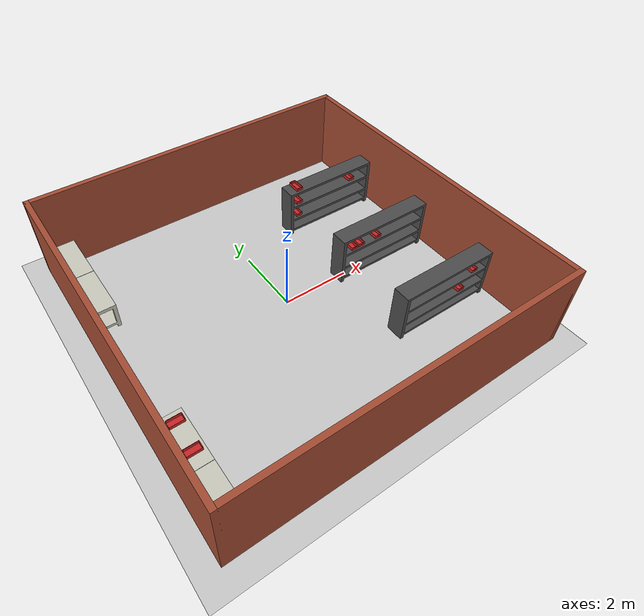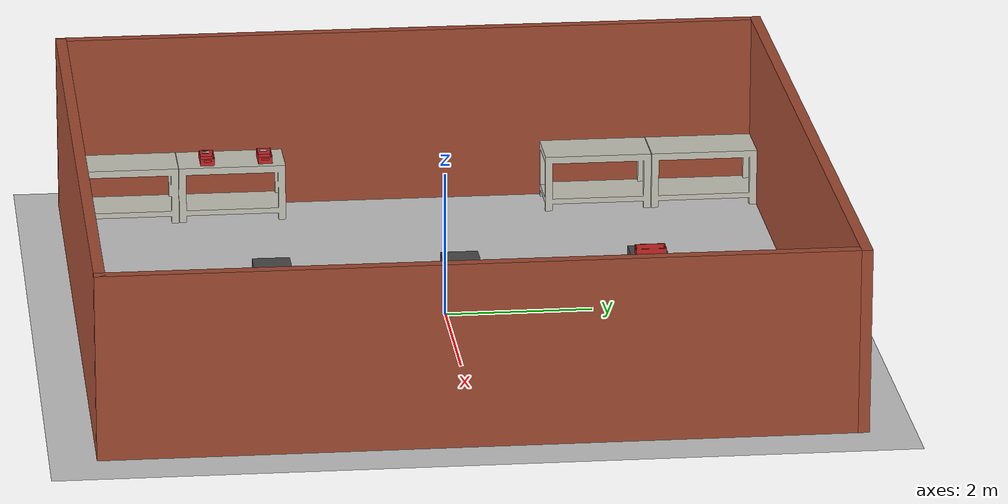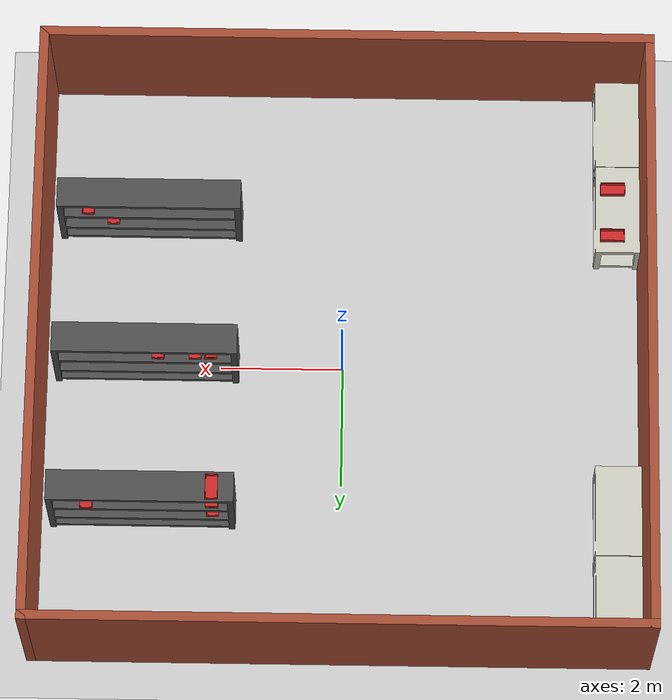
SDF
<sdf version="1.7">
 <world name="default">
  <light name="sun" type="directional">
   <pose>0 0 10 0 -0 0</pose>
   <diffuse>0.8 0.8 0.8 1</diffuse>
   <specular>0.2 0.2 0.2 1</specular>
   <attenuation>
    <range>1000</range>
    <constant>0.9</constant>
    <linear>0.01</linear>
    <quadratic>0.001</quadratic>
   </attenuation>
   <direction>-0.5 0.1 -0.9</direction>
   <spot><inner_angle>0</inner_angle><outer_angle>0</outer_angle><falloff>0</falloff></spot>
  </light>
  <model name="ground_plane">
   <static>1</static>
   <link name="link">
    <collision name="collision">
     <geometry><plane><normal>0 0 1</normal><size>100 100</size></plane></geometry>
     <surface>
      <contact><collide_bitmask>65535</collide_bitmask></contact>
      <friction><ode><mu>100</mu><mu2>50</mu2></ode></friction>
     </surface>
    </collision>
    <visual name="visual">
     <cast_shadows>0</cast_shadows>
     <geometry><plane><normal>0 0 1</normal><size>100 100</size></plane></geometry>
     <material>
      <script><uri>file://media/materials/scripts/gazebo.material</uri><name>Gazebo/Grey</name></script>
     </material>
    </visual>
   </link>
  </model>
  <gravity>0 0 -9.8</gravity>
  <magnetic_field>6e-06 2.3e-05 -4.2e-05</magnetic_field>
  <atmosphere type="adiabatic"/>
  <physics type="ode">
   <max_step_size>0.001</max_step_size>
   <real_time_factor>1</real_time_factor>
   <real_time_update_rate>1000</real_time_update_rate>
  </physics>
  <scene><ambient>0.4 0.4 0.4 1</ambient><background>0.7 0.7 0.7 1</background><shadows>1</shadows></scene>
  <audio><device>default</device></audio>
  <spherical_coordinates>
   <surface_model>EARTH_WGS84</surface_model>
   <latitude_deg>0</latitude_deg>
   <longitude_deg>0</longitude_deg>
   <elevation>0</elevation>
   <heading_deg>0</heading_deg>
  </spherical_coordinates>
  <model name="square_walls_10">
   <link name="Wall_0">
    <collision name="Wall_0_Collision">
     <geometry><box><size>10 0.15 2.5</size></box></geometry>
     <pose>0 0 1.25 0 -0 0</pose>
    </collision>
    <visual name="Wall_0_Visual">
     <pose>0 0 1.25 0 -0 0</pose>
     <geometry><box><size>10 0.15 2.5</size></box></geometry>
     <material>
      <script><uri>file://media/materials/scripts/gazebo.material</uri><name>Gazebo/Bricks</name></script>
      <ambient>1 1 1 1</ambient>
     </material>
     <meta><layer>0</layer></meta>
    </visual>
    <pose>-4.925 0 0 0 -0 -1.5708</pose>
   </link>
   <link name="Wall_1">
    <collision name="Wall_1_Collision">
     <geometry><box><size>10 0.15 2.5</size></box></geometry>
     <pose>0 0 1.25 0 -0 0</pose>
    </collision>
    <visual name="Wall_1_Visual">
     <pose>0 0 1.25 0 -0 0</pose>
     <geometry><box><size>10 0.15 2.5</size></box></geometry>
     <material>
      <script><uri>file://media/materials/scripts/gazebo.material</uri><name>Gazebo/Bricks</name></script>
      <ambient>1 1 1 1</ambient>
     </material>
     <meta><layer>0</layer></meta>
    </visual>
    <pose>-0 -4.925 0 0 -0 0</pose>
   </link>
   <link name="Wall_2">
    <collision name="Wall_2_Collision">
     <geometry><box><size>10 0.15 2.5</size></box></geometry>
     <pose>0 0 1.25 0 -0 0</pose>
    </collision>
    <visual name="Wall_2_Visual">
     <pose>0 0 1.25 0 -0 0</pose>
     <geometry><box><size>10 0.15 2.5</size></box></geometry>
     <material>
      <script><uri>file://media/materials/scripts/gazebo.material</uri><name>Gazebo/Bricks</name></script>
      <ambient>1 1 1 1</ambient>
     </material>
     <meta><layer>0</layer></meta>
    </visual>
    <pose>4.925 0 0 0 -0 1.5708</pose>
   </link>
   <link name="Wall_3">
    <collision name="Wall_3_Collision">
     <geometry><box><size>10 0.15 2.5</size></box></geometry>
     <pose>0 0 1.25 0 -0 0</pose>
    </collision>
    <visual name="Wall_3_Visual">
     <pose>0 0 1.25 0 -0 0</pose>
     <geometry><box><size>10 0.15 2.5</size></box></geometry>
     <material>
      <script><uri>file://media/materials/scripts/gazebo.material</uri><name>Gazebo/Bricks</name></script>
      <ambient>1 1 1 1</ambient>
     </material>
     <meta><layer>0</layer></meta>
    </visual>
    <pose>-0 4.925 0 0 -0 3.14159</pose>
   </link>
   <static>1</static>
  </model>
  <model name="desk_0">
   <link name="link_0">
    <inertial>
     <mass>1</mass>
     <inertia>
      <ixx>0.166667</ixx>
      <ixy>0</ixy>
      <ixz>0</ixz>
      <iyy>0.166667</iyy>
      <iyz>0</iyz>
      <izz>0.166667</izz>
     </inertia>
    </inertial>
    <visual name="visual">
     <geometry>
      <mesh>
       <uri>/home/logilab/ros2_ws/src/gazebo_testenviroment/models/meshes/desk_1500x750.stl</uri>
       <scale>0.001 0.001 0.001</scale>
      </mesh>
     </geometry>
     <material>
      <lighting>1</lighting>
      <script><uri>file://media/materials/scripts/gazebo.material</uri><name>Gazebo/PaintedWall</name></script>
      <shader type="pixel"><normal_map>__default__</normal_map></shader>
      <ambient>0.3 0.3 0.3 1</ambient>
      <diffuse>0.7 0.7 0.7 1</diffuse>
      <specular>0.01 0.01 0.01 1</specular>
      <emissive>0 0 0 1</emissive>
     </material>
    </visual>
    <collision name="collision">
     <geometry>
      <mesh>
       <uri>/home/logilab/ros2_ws/src/gazebo_testenviroment/models/meshes/desk_1500x750.stl</uri>
       <scale>0.001 0.001 0.001</scale>
      </mesh>
     </geometry>
     <surface>
      <friction>
       <ode><mu>1</mu><mu2>1</mu2><fdir1>0 0 0</fdir1><slip1>0</slip1><slip2>0</slip2></ode>
       <torsional>
        <coefficient>1</coefficient>
        <patch_radius>0</patch_radius>
        <surface_radius>0</surface_radius>
        <use_patch_radius>1</use_patch_radius>
        <ode><slip>0</slip></ode>
       </torsional>
      </friction>
      <bounce><restitution_coefficient>0</restitution_coefficient><threshold>1e+06</threshold></bounce>
      <contact>
       <collide_without_contact>0</collide_without_contact>
       <collide_without_contact_bitmask>1</collide_without_contact_bitmask>
       <collide_bitmask>1</collide_bitmask>
       <ode>
        <soft_cfm>0</soft_cfm>
        <soft_erp>0.2</soft_erp>
        <kp>1e+13</kp>
        <kd>1</kd>
        <max_vel>0.01</max_vel>
        <min_depth>0</min_depth>
       </ode>
       <bullet>
        <split_impulse>1</split_impulse>
        <split_impulse_penetration_threshold>-0.01</split_impulse_penetration_threshold>
        <soft_cfm>0</soft_cfm>
        <soft_erp>0.2</soft_erp>
        <kp>1e+13</kp>
        <kd>1</kd>
       </bullet>
      </contact>
     </surface>
    </collision>
   </link>
   <static>1</static>
   <pose>-4.5 -4.09906 0 0 -0 0</pose>
  </model>
  <model name="desk">
   <link name="link_0">
    <inertial>
     <mass>1</mass>
     <inertia>
      <ixx>0.166667</ixx>
      <ixy>0</ixy>
      <ixz>0</ixz>
      <iyy>0.166667</iyy>
      <iyz>0</iyz>
      <izz>0.166667</izz>
     </inertia>
    </inertial>
    <visual name="visual">
     <geometry>
      <mesh>
       <uri>/home/logilab/ros2_ws/src/gazebo_testenviroment/models/meshes/desk_1500x750.stl</uri>
       <scale>0.001 0.001 0.001</scale>
      </mesh>
     </geometry>
     <material>
      <lighting>1</lighting>
      <script><uri>file://media/materials/scripts/gazebo.material</uri><name>Gazebo/PaintedWall</name></script>
      <shader type="pixel"><normal_map>__default__</normal_map></shader>
      <ambient>0.3 0.3 0.3 1</ambient>
      <diffuse>0.7 0.7 0.7 1</diffuse>
      <specular>0.01 0.01 0.01 1</specular>
      <emissive>0 0 0 1</emissive>
     </material>
    </visual>
    <collision name="collision">
     <geometry>
      <mesh>
       <uri>/home/logilab/ros2_ws/src/gazebo_testenviroment/models/meshes/desk_1500x750.stl</uri>
       <scale>0.001 0.001 0.001</scale>
      </mesh>
     </geometry>
     <surface>
      <friction>
       <ode><mu>1</mu><mu2>1</mu2><fdir1>0 0 0</fdir1><slip1>0</slip1><slip2>0</slip2></ode>
       <torsional>
        <coefficient>1</coefficient>
        <patch_radius>0</patch_radius>
        <surface_radius>0</surface_radius>
        <use_patch_radius>1</use_patch_radius>
        <ode><slip>0</slip></ode>
       </torsional>
      </friction>
      <bounce><restitution_coefficient>0</restitution_coefficient><threshold>1e+06</threshold></bounce>
      <contact>
       <collide_without_contact>0</collide_without_contact>
       <collide_without_contact_bitmask>1</collide_without_contact_bitmask>
       <collide_bitmask>1</collide_bitmask>
       <ode>
        <soft_cfm>0</soft_cfm>
        <soft_erp>0.2</soft_erp>
        <kp>1e+13</kp>
        <kd>1</kd>
        <max_vel>0.01</max_vel>
        <min_depth>0</min_depth>
       </ode>
       <bullet>
        <split_impulse>1</split_impulse>
        <split_impulse_penetration_threshold>-0.01</split_impulse_penetration_threshold>
        <soft_cfm>0</soft_cfm>
        <soft_erp>0.2</soft_erp>
        <kp>1e+13</kp>
        <kd>1</kd>
       </bullet>
      </contact>
     </surface>
    </collision>
   </link>
   <static>1</static>
   <pose>-4.49953 -2.59122 0 0 -0 0</pose>
  </model>
  <model name="desk_1">
   <link name="link_0">
    <inertial>
     <mass>1</mass>
     <inertia>
      <ixx>0.166667</ixx>
      <ixy>0</ixy>
      <ixz>0</ixz>
      <iyy>0.166667</iyy>
      <iyz>0</iyz>
      <izz>0.166667</izz>
     </inertia>
    </inertial>
    <visual name="visual">
     <geometry>
      <mesh>
       <uri>/home/logilab/ros2_ws/src/gazebo_testenviroment/models/meshes/desk_1500x750.stl</uri>
       <scale>0.001 0.001 0.001</scale>
      </mesh>
     </geometry>
     <material>
      <lighting>1</lighting>
      <script><uri>file://media/materials/scripts/gazebo.material</uri><name>Gazebo/PaintedWall</name></script>
      <shader type="pixel"><normal_map>__default__</normal_map></shader>
      <ambient>0.3 0.3 0.3 1</ambient>
      <diffuse>0.7 0.7 0.7 1</diffuse>
      <specular>0.01 0.01 0.01 1</specular>
      <emissive>0 0 0 1</emissive>
     </material>
    </visual>
    <collision name="collision">
     <geometry>
      <mesh>
       <uri>/home/logilab/ros2_ws/src/gazebo_testenviroment/models/meshes/desk_1500x750.stl</uri>
       <scale>0.001 0.001 0.001</scale>
      </mesh>
     </geometry>
     <surface>
      <friction>
       <ode><mu>1</mu><mu2>1</mu2><fdir1>0 0 0</fdir1><slip1>0</slip1><slip2>0</slip2></ode>
       <torsional>
        <coefficient>1</coefficient>
        <patch_radius>0</patch_radius>
        <surface_radius>0</surface_radius>
        <use_patch_radius>1</use_patch_radius>
        <ode><slip>0</slip></ode>
       </torsional>
      </friction>
      <bounce><restitution_coefficient>0</restitution_coefficient><threshold>1e+06</threshold></bounce>
      <contact>
       <collide_without_contact>0</collide_without_contact>
       <collide_without_contact_bitmask>1</collide_without_contact_bitmask>
       <collide_bitmask>1</collide_bitmask>
       <ode>
        <soft_cfm>0</soft_cfm>
        <soft_erp>0.2</soft_erp>
        <kp>1e+13</kp>
        <kd>1</kd>
        <max_vel>0.01</max_vel>
        <min_depth>0</min_depth>
       </ode>
       <bullet>
        <split_impulse>1</split_impulse>
        <split_impulse_penetration_threshold>-0.01</split_impulse_penetration_threshold>
        <soft_cfm>0</soft_cfm>
        <soft_erp>0.2</soft_erp>
        <kp>1e+13</kp>
        <kd>1</kd>
       </bullet>
      </contact>
     </surface>
    </collision>
   </link>
   <static>1</static>
   <pose>-4.4723 4.09934 0 0 -0 0</pose>
  </model>
  <model name="desk_2">
   <link name="link_0">
    <inertial>
     <mass>1</mass>
     <inertia>
      <ixx>0.166667</ixx>
      <ixy>0</ixy>
      <ixz>0</ixz>
      <iyy>0.166667</iyy>
      <iyz>0</iyz>
      <izz>0.166667</izz>
     </inertia>
    </inertial>
    <visual name="visual">
     <geometry>
      <mesh>
       <uri>/home/logilab/ros2_ws/src/gazebo_testenviroment/models/meshes/desk_1500x750.stl</uri>
       <scale>0.001 0.001 0.001</scale>
      </mesh>
     </geometry>
     <material>
      <lighting>1</lighting>
      <script><uri>file://media/materials/scripts/gazebo.material</uri><name>Gazebo/PaintedWall</name></script>
      <shader type="pixel"><normal_map>__default__</normal_map></shader>
      <ambient>0.3 0.3 0.3 1</ambient>
      <diffuse>0.7 0.7 0.7 1</diffuse>
      <specular>0.01 0.01 0.01 1</specular>
      <emissive>0 0 0 1</emissive>
     </material>
    </visual>
    <collision name="collision">
     <geometry>
      <mesh>
       <uri>/home/logilab/ros2_ws/src/gazebo_testenviroment/models/meshes/desk_1500x750.stl</uri>
       <scale>0.001 0.001 0.001</scale>
      </mesh>
     </geometry>
     <surface>
      <friction>
       <ode><mu>1</mu><mu2>1</mu2><fdir1>0 0 0</fdir1><slip1>0</slip1><slip2>0</slip2></ode>
       <torsional>
        <coefficient>1</coefficient>
        <patch_radius>0</patch_radius>
        <surface_radius>0</surface_radius>
        <use_patch_radius>1</use_patch_radius>
        <ode><slip>0</slip></ode>
       </torsional>
      </friction>
      <bounce><restitution_coefficient>0</restitution_coefficient><threshold>1e+06</threshold></bounce>
      <contact>
       <collide_without_contact>0</collide_without_contact>
       <collide_without_contact_bitmask>1</collide_without_contact_bitmask>
       <collide_bitmask>1</collide_bitmask>
       <ode>
        <soft_cfm>0</soft_cfm>
        <soft_erp>0.2</soft_erp>
        <kp>1e+13</kp>
        <kd>1</kd>
        <max_vel>0.01</max_vel>
        <min_depth>0</min_depth>
       </ode>
       <bullet>
        <split_impulse>1</split_impulse>
        <split_impulse_penetration_threshold>-0.01</split_impulse_penetration_threshold>
        <soft_cfm>0</soft_cfm>
        <soft_erp>0.2</soft_erp>
        <kp>1e+13</kp>
        <kd>1</kd>
       </bullet>
      </contact>
     </surface>
    </collision>
   </link>
   <static>1</static>
   <pose>-4.47195 2.5893 0 0 -0 0</pose>
  </model>
  <model name="shelf">
   <link name="link_1">
    <inertial>
     <mass>1</mass>
     <inertia>
      <ixx>0.166667</ixx>
      <ixy>0</ixy>
      <ixz>0</ixz>
      <iyy>0.166667</iyy>
      <iyz>0</iyz>
      <izz>0.166667</izz>
     </inertia>
    </inertial>
    <visual name="visual">
     <geometry>
      <mesh>
       <uri>/home/logilab/ros2_ws/src/gazebo_testenviroment/models/meshes/shelf_3000x500.stl</uri>
       <scale>0.001 0.001 0.001</scale>
      </mesh>
     </geometry>
     <material>
      <lighting>1</lighting>
      <script><uri>file://media/materials/scripts/gazebo.material</uri><name>Gazebo/DarkGrey</name></script>
      <shader type="pixel"/>
     </material>
    </visual>
    <collision name="collision">
     <geometry>
      <mesh>
       <uri>/home/logilab/ros2_ws/src/gazebo_testenviroment/models/meshes/shelf_3000x500.stl</uri>
       <scale>0.001 0.001 0.001</scale>
      </mesh>
     </geometry>
     <surface>
      <friction>
       <ode><mu>1</mu><mu2>1</mu2><fdir1>0 0 0</fdir1><slip1>0</slip1><slip2>0</slip2></ode>
       <torsional>
        <coefficient>1</coefficient>
        <patch_radius>0</patch_radius>
        <surface_radius>0</surface_radius>
        <use_patch_radius>1</use_patch_radius>
        <ode><slip>0</slip></ode>
       </torsional>
      </friction>
      <bounce><restitution_coefficient>0</restitution_coefficient><threshold>1e+06</threshold></bounce>
      <contact>
       <collide_without_contact>0</collide_without_contact>
       <collide_without_contact_bitmask>1</collide_without_contact_bitmask>
       <collide_bitmask>1</collide_bitmask>
       <ode>
        <soft_cfm>0</soft_cfm>
        <soft_erp>0.2</soft_erp>
        <kp>1e+13</kp>
        <kd>1</kd>
        <max_vel>0.01</max_vel>
        <min_depth>0</min_depth>
       </ode>
       <bullet>
        <split_impulse>1</split_impulse>
        <split_impulse_penetration_threshold>-0.01</split_impulse_penetration_threshold>
        <soft_cfm>0</soft_cfm>
        <soft_erp>0.2</soft_erp>
        <kp>1e+13</kp>
        <kd>1</kd>
       </bullet>
      </contact>
     </surface>
    </collision>
   </link>
   <static>1</static>
   <pose>3.2 -2.5 0 0 -0 1.57</pose>
  </model>
  <model name="shelf_0">
   <link name="link_1">
    <inertial>
     <mass>1</mass>
     <inertia>
      <ixx>0.166667</ixx>
      <ixy>0</ixy>
      <ixz>0</ixz>
      <iyy>0.166667</iyy>
      <iyz>0</iyz>
      <izz>0.166667</izz>
     </inertia>
    </inertial>
    <visual name="visual">
     <geometry>
      <mesh>
       <uri>/home/logilab/ros2_ws/src/gazebo_testenviroment/models/meshes/shelf_3000x500.stl</uri>
       <scale>0.001 0.001 0.001</scale>
      </mesh>
     </geometry>
     <material>
      <lighting>1</lighting>
      <script><uri>file://media/materials/scripts/gazebo.material</uri><name>Gazebo/DarkGrey</name></script>
      <shader type="pixel"/>
     </material>
    </visual>
    <collision name="collision">
     <geometry>
      <mesh>
       <uri>/home/logilab/ros2_ws/src/gazebo_testenviroment/models/meshes/shelf_3000x500.stl</uri>
       <scale>0.001 0.001 0.001</scale>
      </mesh>
     </geometry>
     <surface>
      <friction>
       <ode><mu>1</mu><mu2>1</mu2><fdir1>0 0 0</fdir1><slip1>0</slip1><slip2>0</slip2></ode>
       <torsional>
        <coefficient>1</coefficient>
        <patch_radius>0</patch_radius>
        <surface_radius>0</surface_radius>
        <use_patch_radius>1</use_patch_radius>
        <ode><slip>0</slip></ode>
       </torsional>
      </friction>
      <bounce><restitution_coefficient>0</restitution_coefficient><threshold>1e+06</threshold></bounce>
      <contact>
       <collide_without_contact>0</collide_without_contact>
       <collide_without_contact_bitmask>1</collide_without_contact_bitmask>
       <collide_bitmask>1</collide_bitmask>
       <ode>
        <soft_cfm>0</soft_cfm>
        <soft_erp>0.2</soft_erp>
        <kp>1e+13</kp>
        <kd>1</kd>
        <max_vel>0.01</max_vel>
        <min_depth>0</min_depth>
       </ode>
       <bullet>
        <split_impulse>1</split_impulse>
        <split_impulse_penetration_threshold>-0.01</split_impulse_penetration_threshold>
        <soft_cfm>0</soft_cfm>
        <soft_erp>0.2</soft_erp>
        <kp>1e+13</kp>
        <kd>1</kd>
       </bullet>
      </contact>
     </surface>
    </collision>
   </link>
   <static>1</static>
   <pose>3.20039 0 0 0 -0 1.57</pose>
  </model>
  <model name="shelf_1">
   <link name="link_1">
    <inertial>
     <mass>1</mass>
     <inertia>
      <ixx>0.166667</ixx>
      <ixy>0</ixy>
      <ixz>0</ixz>
      <iyy>0.166667</iyy>
      <iyz>0</iyz>
      <izz>0.166667</izz>
     </inertia>
    </inertial>
    <visual name="visual">
     <geometry>
      <mesh>
       <uri>/home/logilab/ros2_ws/src/gazebo_testenviroment/models/meshes/shelf_3000x500.stl</uri>
       <scale>0.001 0.001 0.001</scale>
      </mesh>
     </geometry>
     <material>
      <lighting>1</lighting>
      <script><uri>file://media/materials/scripts/gazebo.material</uri><name>Gazebo/DarkGrey</name></script>
      <shader type="pixel"/>
     </material>
    </visual>
    <collision name="collision">
     <geometry>
      <mesh>
       <uri>/home/logilab/ros2_ws/src/gazebo_testenviroment/models/meshes/shelf_3000x500.stl</uri>
       <scale>0.001 0.001 0.001</scale>
      </mesh>
     </geometry>
     <surface>
      <friction>
       <ode><mu>1</mu><mu2>1</mu2><fdir1>0 0 0</fdir1><slip1>0</slip1><slip2>0</slip2></ode>
       <torsional>
        <coefficient>1</coefficient>
        <patch_radius>0</patch_radius>
        <surface_radius>0</surface_radius>
        <use_patch_radius>1</use_patch_radius>
        <ode><slip>0</slip></ode>
       </torsional>
      </friction>
      <bounce><restitution_coefficient>0</restitution_coefficient><threshold>1e+06</threshold></bounce>
      <contact>
       <collide_without_contact>0</collide_without_contact>
       <collide_without_contact_bitmask>1</collide_without_contact_bitmask>
       <collide_bitmask>1</collide_bitmask>
       <ode>
        <soft_cfm>0</soft_cfm>
        <soft_erp>0.2</soft_erp>
        <kp>1e+13</kp>
        <kd>1</kd>
        <max_vel>0.01</max_vel>
        <min_depth>0</min_depth>
       </ode>
       <bullet>
        <split_impulse>1</split_impulse>
        <split_impulse_penetration_threshold>-0.01</split_impulse_penetration_threshold>
        <soft_cfm>0</soft_cfm>
        <soft_erp>0.2</soft_erp>
        <kp>1e+13</kp>
        <kd>1</kd>
       </bullet>
      </contact>
     </surface>
    </collision>
   </link>
   <static>1</static>
   <pose>3.2 2.5 0 0 -0 1.57</pose>
  </model>
  <model name="KLT">
   <link name="link_3">
    <inertial>
     <mass>1</mass>
     <inertia>
      <ixx>0.166667</ixx>
      <ixy>0</ixy>
      <ixz>0</ixz>
      <iyy>0.166667</iyy>
      <iyz>0</iyz>
      <izz>0.166667</izz>
     </inertia>
    </inertial>
    <visual name="visual">
     <geometry>
      <mesh>
       <uri>/home/logilab/ros2_ws/src/gazebo_testenviroment/models/meshes/KLT_200x400.stl</uri>
       <scale>0.001 0.001 0.001</scale>
      </mesh>
     </geometry>
     <material>
      <lighting>1</lighting>
      <script><uri>file://media/materials/scripts/gazebo.material</uri><name>Gazebo/Red</name></script>
      <shader type="pixel"/>
     </material>
    </visual>
    <collision name="collision">
     <geometry>
      <mesh>
       <uri>/home/logilab/ros2_ws/src/gazebo_testenviroment/models/meshes/KLT_200x400.stl</uri>
       <scale>0.001 0.001 0.001</scale>
      </mesh>
     </geometry>
     <surface>
      <friction>
       <ode><mu>1</mu><mu2>1</mu2><fdir1>0 0 0</fdir1><slip1>0</slip1><slip2>0</slip2></ode>
       <torsional>
        <coefficient>1</coefficient>
        <patch_radius>0</patch_radius>
        <surface_radius>0</surface_radius>
        <use_patch_radius>1</use_patch_radius>
        <ode><slip>0</slip></ode>
       </torsional>
      </friction>
      <bounce><restitution_coefficient>0</restitution_coefficient><threshold>1e+06</threshold></bounce>
      <contact>
       <collide_without_contact>0</collide_without_contact>
       <collide_without_contact_bitmask>1</collide_without_contact_bitmask>
       <collide_bitmask>1</collide_bitmask>
       <ode>
        <soft_cfm>0</soft_cfm>
        <soft_erp>0.2</soft_erp>
        <kp>1e+13</kp>
        <kd>1</kd>
        <max_vel>0.01</max_vel>
        <min_depth>0</min_depth>
       </ode>
       <bullet>
        <split_impulse>1</split_impulse>
        <split_impulse_penetration_threshold>-0.01</split_impulse_penetration_threshold>
        <soft_cfm>0</soft_cfm>
        <soft_erp>0.2</soft_erp>
        <kp>1e+13</kp>
        <kd>1</kd>
       </bullet>
      </contact>
     </surface>
    </collision>
   </link>
   <static>1</static>
   <pose>-4.39679 -2.1164 0.80797 0 -0 0</pose>
  </model>
  <model name="KLT_0">
   <link name="link_3">
    <inertial>
     <mass>1</mass>
     <inertia>
      <ixx>0.166667</ixx>
      <ixy>0</ixy>
      <ixz>0</ixz>
      <iyy>0.166667</iyy>
      <iyz>0</iyz>
      <izz>0.166667</izz>
     </inertia>
    </inertial>
    <visual name="visual">
     <geometry>
      <mesh>
       <uri>/home/logilab/ros2_ws/src/gazebo_testenviroment/models/meshes/KLT_200x400.stl</uri>
       <scale>0.001 0.001 0.001</scale>
      </mesh>
     </geometry>
     <material>
      <lighting>1</lighting>
      <script><uri>file://media/materials/scripts/gazebo.material</uri><name>Gazebo/Red</name></script>
      <shader type="pixel"/>
     </material>
    </visual>
    <collision name="collision">
     <geometry>
      <mesh>
       <uri>/home/logilab/ros2_ws/src/gazebo_testenviroment/models/meshes/KLT_200x400.stl</uri>
       <scale>0.001 0.001 0.001</scale>
      </mesh>
     </geometry>
     <surface>
      <friction>
       <ode><mu>1</mu><mu2>1</mu2><fdir1>0 0 0</fdir1><slip1>0</slip1><slip2>0</slip2></ode>
       <torsional>
        <coefficient>1</coefficient>
        <patch_radius>0</patch_radius>
        <surface_radius>0</surface_radius>
        <use_patch_radius>1</use_patch_radius>
        <ode><slip>0</slip></ode>
       </torsional>
      </friction>
      <bounce><restitution_coefficient>0</restitution_coefficient><threshold>1e+06</threshold></bounce>
      <contact>
       <collide_without_contact>0</collide_without_contact>
       <collide_without_contact_bitmask>1</collide_without_contact_bitmask>
       <collide_bitmask>1</collide_bitmask>
       <ode>
        <soft_cfm>0</soft_cfm>
        <soft_erp>0.2</soft_erp>
        <kp>1e+13</kp>
        <kd>1</kd>
        <max_vel>0.01</max_vel>
        <min_depth>0</min_depth>
       </ode>
       <bullet>
        <split_impulse>1</split_impulse>
        <split_impulse_penetration_threshold>-0.01</split_impulse_penetration_threshold>
        <soft_cfm>0</soft_cfm>
        <soft_erp>0.2</soft_erp>
        <kp>1e+13</kp>
        <kd>1</kd>
       </bullet>
      </contact>
     </surface>
    </collision>
   </link>
   <static>1</static>
   <pose>-4.40641 -2.92941 0.802368 0 -0 0</pose>
  </model>
  <model name="KLT_1">
   <link name="link_3">
    <inertial>
     <mass>1</mass>
     <inertia>
      <ixx>0.166667</ixx>
      <ixy>0</ixy>
      <ixz>0</ixz>
      <iyy>0.166667</iyy>
      <iyz>0</iyz>
      <izz>0.166667</izz>
     </inertia>
    </inertial>
    <visual name="visual">
     <geometry>
      <mesh>
       <uri>/home/logilab/ros2_ws/src/gazebo_testenviroment/models/meshes/KLT_200x400.stl</uri>
       <scale>0.001 0.001 0.001</scale>
      </mesh>
     </geometry>
     <material>
      <lighting>1</lighting>
      <script><uri>file://media/materials/scripts/gazebo.material</uri><name>Gazebo/Red</name></script>
      <shader type="pixel"/>
     </material>
    </visual>
    <collision name="collision">
     <geometry>
      <mesh>
       <uri>/home/logilab/ros2_ws/src/gazebo_testenviroment/models/meshes/KLT_200x400.stl</uri>
       <scale>0.001 0.001 0.001</scale>
      </mesh>
     </geometry>
     <surface>
      <friction>
       <ode><mu>1</mu><mu2>1</mu2><fdir1>0 0 0</fdir1><slip1>0</slip1><slip2>0</slip2></ode>
       <torsional>
        <coefficient>1</coefficient>
        <patch_radius>0</patch_radius>
        <surface_radius>0</surface_radius>
        <use_patch_radius>1</use_patch_radius>
        <ode><slip>0</slip></ode>
       </torsional>
      </friction>
      <bounce><restitution_coefficient>0</restitution_coefficient><threshold>1e+06</threshold></bounce>
      <contact>
       <collide_without_contact>0</collide_without_contact>
       <collide_without_contact_bitmask>1</collide_without_contact_bitmask>
       <collide_bitmask>1</collide_bitmask>
       <ode>
        <soft_cfm>0</soft_cfm>
        <soft_erp>0.2</soft_erp>
        <kp>1e+13</kp>
        <kd>1</kd>
        <max_vel>0.01</max_vel>
        <min_depth>0</min_depth>
       </ode>
       <bullet>
        <split_impulse>1</split_impulse>
        <split_impulse_penetration_threshold>-0.01</split_impulse_penetration_threshold>
        <soft_cfm>0</soft_cfm>
        <soft_erp>0.2</soft_erp>
        <kp>1e+13</kp>
        <kd>1</kd>
       </bullet>
      </contact>
     </surface>
    </collision>
   </link>
   <static>1</static>
   <pose>2.38612 -0.000202 1.027 0 -0 1.57</pose>
  </model>
  <model name="KLT_1_clone">
   <link name="link_3">
    <inertial>
     <mass>1</mass>
     <inertia>
      <ixx>0.166667</ixx>
      <ixy>0</ixy>
      <ixz>0</ixz>
      <iyy>0.166667</iyy>
      <iyz>0</iyz>
      <izz>0.166667</izz>
     </inertia>
    </inertial>
    <visual name="visual">
     <geometry>
      <mesh>
       <uri>/home/logilab/ros2_ws/src/gazebo_testenviroment/models/meshes/KLT_200x400.stl</uri>
       <scale>0.001 0.001 0.001</scale>
      </mesh>
     </geometry>
     <material>
      <lighting>1</lighting>
      <script><uri>file://media/materials/scripts/gazebo.material</uri><name>Gazebo/Red</name></script>
      <shader type="pixel"/>
     </material>
    </visual>
    <collision name="collision">
     <geometry>
      <mesh>
       <uri>/home/logilab/ros2_ws/src/gazebo_testenviroment/models/meshes/KLT_200x400.stl</uri>
       <scale>0.001 0.001 0.001</scale>
      </mesh>
     </geometry>
     <surface>
      <friction>
       <ode><mu>1</mu><mu2>1</mu2><fdir1>0 0 0</fdir1><slip1>0</slip1><slip2>0</slip2></ode>
       <torsional>
        <coefficient>1</coefficient>
        <patch_radius>0</patch_radius>
        <surface_radius>0</surface_radius>
        <use_patch_radius>1</use_patch_radius>
        <ode><slip>0</slip></ode>
       </torsional>
      </friction>
      <bounce><restitution_coefficient>0</restitution_coefficient><threshold>1e+06</threshold></bounce>
      <contact>
       <collide_without_contact>0</collide_without_contact>
       <collide_without_contact_bitmask>1</collide_without_contact_bitmask>
       <collide_bitmask>1</collide_bitmask>
       <ode>
        <soft_cfm>0</soft_cfm>
        <soft_erp>0.2</soft_erp>
        <kp>1e+13</kp>
        <kd>1</kd>
        <max_vel>0.01</max_vel>
        <min_depth>0</min_depth>
       </ode>
       <bullet>
        <split_impulse>1</split_impulse>
        <split_impulse_penetration_threshold>-0.01</split_impulse_penetration_threshold>
        <soft_cfm>0</soft_cfm>
        <soft_erp>0.2</soft_erp>
        <kp>1e+13</kp>
        <kd>1</kd>
       </bullet>
      </contact>
     </surface>
    </collision>
   </link>
   <static>1</static>
   <pose>2.13477 -0.008643 1.027 0 -0 1.57</pose>
  </model>
  <model name="KLT_1_clone_0">
   <link name="link_3">
    <inertial>
     <mass>1</mass>
     <inertia>
      <ixx>0.166667</ixx>
      <ixy>0</ixy>
      <ixz>0</ixz>
      <iyy>0.166667</iyy>
      <iyz>0</iyz>
      <izz>0.166667</izz>
     </inertia>
    </inertial>
    <visual name="visual">
     <geometry>
      <mesh>
       <uri>/home/logilab/ros2_ws/src/gazebo_testenviroment/models/meshes/KLT_200x400.stl</uri>
       <scale>0.001 0.001 0.001</scale>
      </mesh>
     </geometry>
     <material>
      <lighting>1</lighting>
      <script><uri>file://media/materials/scripts/gazebo.material</uri><name>Gazebo/Red</name></script>
      <shader type="pixel"/>
     </material>
    </visual>
    <collision name="collision">
     <geometry>
      <mesh>
       <uri>/home/logilab/ros2_ws/src/gazebo_testenviroment/models/meshes/KLT_200x400.stl</uri>
       <scale>0.001 0.001 0.001</scale>
      </mesh>
     </geometry>
     <surface>
      <friction>
       <ode><mu>1</mu><mu2>1</mu2><fdir1>0 0 0</fdir1><slip1>0</slip1><slip2>0</slip2></ode>
       <torsional>
        <coefficient>1</coefficient>
        <patch_radius>0</patch_radius>
        <surface_radius>0</surface_radius>
        <use_patch_radius>1</use_patch_radius>
        <ode><slip>0</slip></ode>
       </torsional>
      </friction>
      <bounce><restitution_coefficient>0</restitution_coefficient><threshold>1e+06</threshold></bounce>
      <contact>
       <collide_without_contact>0</collide_without_contact>
       <collide_without_contact_bitmask>1</collide_without_contact_bitmask>
       <collide_bitmask>1</collide_bitmask>
       <ode>
        <soft_cfm>0</soft_cfm>
        <soft_erp>0.2</soft_erp>
        <kp>1e+13</kp>
        <kd>1</kd>
        <max_vel>0.01</max_vel>
        <min_depth>0</min_depth>
       </ode>
       <bullet>
        <split_impulse>1</split_impulse>
        <split_impulse_penetration_threshold>-0.01</split_impulse_penetration_threshold>
        <soft_cfm>0</soft_cfm>
        <soft_erp>0.2</soft_erp>
        <kp>1e+13</kp>
        <kd>1</kd>
       </bullet>
      </contact>
     </surface>
    </collision>
   </link>
   <static>1</static>
   <pose>2.99035 0.000936 1.027 0 -0 1.57</pose>
  </model>
  <model name="KLT_1_clone_1">
   <link name="link_3">
    <inertial>
     <mass>1</mass>
     <inertia>
      <ixx>0.166667</ixx>
      <ixy>0</ixy>
      <ixz>0</ixz>
      <iyy>0.166667</iyy>
      <iyz>0</iyz>
      <izz>0.166667</izz>
     </inertia>
    </inertial>
    <visual name="visual">
     <geometry>
      <mesh>
       <uri>/home/logilab/ros2_ws/src/gazebo_testenviroment/models/meshes/KLT_200x400.stl</uri>
       <scale>0.001 0.001 0.001</scale>
      </mesh>
     </geometry>
     <material>
      <lighting>1</lighting>
      <script><uri>file://media/materials/scripts/gazebo.material</uri><name>Gazebo/Red</name></script>
      <shader type="pixel"/>
     </material>
    </visual>
    <collision name="collision">
     <geometry>
      <mesh>
       <uri>/home/logilab/ros2_ws/src/gazebo_testenviroment/models/meshes/KLT_200x400.stl</uri>
       <scale>0.001 0.001 0.001</scale>
      </mesh>
     </geometry>
     <surface>
      <friction>
       <ode><mu>1</mu><mu2>1</mu2><fdir1>0 0 0</fdir1><slip1>0</slip1><slip2>0</slip2></ode>
       <torsional>
        <coefficient>1</coefficient>
        <patch_radius>0</patch_radius>
        <surface_radius>0</surface_radius>
        <use_patch_radius>1</use_patch_radius>
        <ode><slip>0</slip></ode>
       </torsional>
      </friction>
      <bounce><restitution_coefficient>0</restitution_coefficient><threshold>1e+06</threshold></bounce>
      <contact>
       <collide_without_contact>0</collide_without_contact>
       <collide_without_contact_bitmask>1</collide_without_contact_bitmask>
       <collide_bitmask>1</collide_bitmask>
       <ode>
        <soft_cfm>0</soft_cfm>
        <soft_erp>0.2</soft_erp>
        <kp>1e+13</kp>
        <kd>1</kd>
        <max_vel>0.01</max_vel>
        <min_depth>0</min_depth>
       </ode>
       <bullet>
        <split_impulse>1</split_impulse>
        <split_impulse_penetration_threshold>-0.01</split_impulse_penetration_threshold>
        <soft_cfm>0</soft_cfm>
        <soft_erp>0.2</soft_erp>
        <kp>1e+13</kp>
        <kd>1</kd>
       </bullet>
      </contact>
     </surface>
    </collision>
   </link>
   <static>1</static>
   <pose>4.06734 2.54867 1.027 0 -0 1.57</pose>
  </model>
  <model name="KLT_1_clone_2">
   <link name="link_3">
    <inertial>
     <mass>1</mass>
     <inertia>
      <ixx>0.166667</ixx>
      <ixy>0</ixy>
      <ixz>0</ixz>
      <iyy>0.166667</iyy>
      <iyz>0</iyz>
      <izz>0.166667</izz>
     </inertia>
    </inertial>
    <visual name="visual">
     <geometry>
      <mesh>
       <uri>/home/logilab/ros2_ws/src/gazebo_testenviroment/models/meshes/KLT_200x400.stl</uri>
       <scale>0.001 0.001 0.001</scale>
      </mesh>
     </geometry>
     <material>
      <lighting>1</lighting>
      <script><uri>file://media/materials/scripts/gazebo.material</uri><name>Gazebo/Red</name></script>
      <shader type="pixel"/>
     </material>
    </visual>
    <collision name="collision">
     <geometry>
      <mesh>
       <uri>/home/logilab/ros2_ws/src/gazebo_testenviroment/models/meshes/KLT_200x400.stl</uri>
       <scale>0.001 0.001 0.001</scale>
      </mesh>
     </geometry>
     <surface>
      <friction>
       <ode><mu>1</mu><mu2>1</mu2><fdir1>0 0 0</fdir1><slip1>0</slip1><slip2>0</slip2></ode>
       <torsional>
        <coefficient>1</coefficient>
        <patch_radius>0</patch_radius>
        <surface_radius>0</surface_radius>
        <use_patch_radius>1</use_patch_radius>
        <ode><slip>0</slip></ode>
       </torsional>
      </friction>
      <bounce><restitution_coefficient>0</restitution_coefficient><threshold>1e+06</threshold></bounce>
      <contact>
       <collide_without_contact>0</collide_without_contact>
       <collide_without_contact_bitmask>1</collide_without_contact_bitmask>
       <collide_bitmask>1</collide_bitmask>
       <ode>
        <soft_cfm>0</soft_cfm>
        <soft_erp>0.2</soft_erp>
        <kp>1e+13</kp>
        <kd>1</kd>
        <max_vel>0.01</max_vel>
        <min_depth>0</min_depth>
       </ode>
       <bullet>
        <split_impulse>1</split_impulse>
        <split_impulse_penetration_threshold>-0.01</split_impulse_penetration_threshold>
        <soft_cfm>0</soft_cfm>
        <soft_erp>0.2</soft_erp>
        <kp>1e+13</kp>
        <kd>1</kd>
       </bullet>
      </contact>
     </surface>
    </collision>
   </link>
   <static>1</static>
   <pose>2.0535 2.51569 1.50634 0 -0 1.57</pose>
  </model>
  <model name="KLT_1_clone_2_clone">
   <link name="link_3">
    <inertial>
     <mass>1</mass>
     <inertia>
      <ixx>0.166667</ixx>
      <ixy>0</ixy>
      <ixz>0</ixz>
      <iyy>0.166667</iyy>
      <iyz>0</iyz>
      <izz>0.166667</izz>
     </inertia>
    </inertial>
    <visual name="visual">
     <geometry>
      <mesh>
       <uri>/home/logilab/ros2_ws/src/gazebo_testenviroment/models/meshes/KLT_200x400.stl</uri>
       <scale>0.001 0.001 0.001</scale>
      </mesh>
     </geometry>
     <material>
      <lighting>1</lighting>
      <script><uri>file://media/materials/scripts/gazebo.material</uri><name>Gazebo/Red</name></script>
      <shader type="pixel"/>
     </material>
    </visual>
    <collision name="collision">
     <geometry>
      <mesh>
       <uri>/home/logilab/ros2_ws/src/gazebo_testenviroment/models/meshes/KLT_200x400.stl</uri>
       <scale>0.001 0.001 0.001</scale>
      </mesh>
     </geometry>
     <surface>
      <friction>
       <ode><mu>1</mu><mu2>1</mu2><fdir1>0 0 0</fdir1><slip1>0</slip1><slip2>0</slip2></ode>
       <torsional>
        <coefficient>1</coefficient>
        <patch_radius>0</patch_radius>
        <surface_radius>0</surface_radius>
        <use_patch_radius>1</use_patch_radius>
        <ode><slip>0</slip></ode>
       </torsional>
      </friction>
      <bounce><restitution_coefficient>0</restitution_coefficient><threshold>1e+06</threshold></bounce>
      <contact>
       <collide_without_contact>0</collide_without_contact>
       <collide_without_contact_bitmask>1</collide_without_contact_bitmask>
       <collide_bitmask>1</collide_bitmask>
       <ode>
        <soft_cfm>0</soft_cfm>
        <soft_erp>0.2</soft_erp>
        <kp>1e+13</kp>
        <kd>1</kd>
        <max_vel>0.01</max_vel>
        <min_depth>0</min_depth>
       </ode>
       <bullet>
        <split_impulse>1</split_impulse>
        <split_impulse_penetration_threshold>-0.01</split_impulse_penetration_threshold>
        <soft_cfm>0</soft_cfm>
        <soft_erp>0.2</soft_erp>
        <kp>1e+13</kp>
        <kd>1</kd>
       </bullet>
      </contact>
     </surface>
    </collision>
   </link>
   <static>1</static>
   <pose>2.05531 2.51019 0.554963 0 -0 1.57</pose>
  </model>
  <model name="KLT_1_clone_2_clone_clone">
   <link name="link_3">
    <inertial>
     <mass>1</mass>
     <inertia>
      <ixx>0.166667</ixx>
      <ixy>0</ixy>
      <ixz>0</ixz>
      <iyy>0.166667</iyy>
      <iyz>0</iyz>
      <izz>0.166667</izz>
     </inertia>
    </inertial>
    <visual name="visual">
     <geometry>
      <mesh>
       <uri>/home/logilab/ros2_ws/src/gazebo_testenviroment/models/meshes/KLT_200x400.stl</uri>
       <scale>0.001 0.001 0.001</scale>
      </mesh>
     </geometry>
     <material>
      <lighting>1</lighting>
      <script><uri>file://media/materials/scripts/gazebo.material</uri><name>Gazebo/Red</name></script>
      <shader type="pixel"/>
     </material>
    </visual>
    <collision name="collision">
     <geometry>
      <mesh>
       <uri>/home/logilab/ros2_ws/src/gazebo_testenviroment/models/meshes/KLT_200x400.stl</uri>
       <scale>0.001 0.001 0.001</scale>
      </mesh>
     </geometry>
     <surface>
      <friction>
       <ode><mu>1</mu><mu2>1</mu2><fdir1>0 0 0</fdir1><slip1>0</slip1><slip2>0</slip2></ode>
       <torsional>
        <coefficient>1</coefficient>
        <patch_radius>0</patch_radius>
        <surface_radius>0</surface_radius>
        <use_patch_radius>1</use_patch_radius>
        <ode><slip>0</slip></ode>
       </torsional>
      </friction>
      <bounce><restitution_coefficient>0</restitution_coefficient><threshold>1e+06</threshold></bounce>
      <contact>
       <collide_without_contact>0</collide_without_contact>
       <collide_without_contact_bitmask>1</collide_without_contact_bitmask>
       <collide_bitmask>1</collide_bitmask>
       <ode>
        <soft_cfm>0</soft_cfm>
        <soft_erp>0.2</soft_erp>
        <kp>1e+13</kp>
        <kd>1</kd>
        <max_vel>0.01</max_vel>
        <min_depth>0</min_depth>
       </ode>
       <bullet>
        <split_impulse>1</split_impulse>
        <split_impulse_penetration_threshold>-0.01</split_impulse_penetration_threshold>
        <soft_cfm>0</soft_cfm>
        <soft_erp>0.2</soft_erp>
        <kp>1e+13</kp>
        <kd>1</kd>
       </bullet>
      </contact>
     </surface>
    </collision>
   </link>
   <static>1</static>
   <pose>2.05708 2.51419 1.027 0 -0 1.57</pose>
  </model>
  <model name="KLT_1_clone_0_clone">
   <link name="link_3">
    <inertial>
     <mass>1</mass>
     <inertia>
      <ixx>0.166667</ixx>
      <ixy>0</ixy>
      <ixz>0</ixz>
      <iyy>0.166667</iyy>
      <iyz>0</iyz>
      <izz>0.166667</izz>
     </inertia>
    </inertial>
    <visual name="visual">
     <geometry>
      <mesh>
       <uri>/home/logilab/ros2_ws/src/gazebo_testenviroment/models/meshes/KLT_200x400.stl</uri>
       <scale>0.001 0.001 0.001</scale>
      </mesh>
     </geometry>
     <material>
      <lighting>1</lighting>
      <script><uri>file://media/materials/scripts/gazebo.material</uri><name>Gazebo/Red</name></script>
      <shader type="pixel"/>
     </material>
    </visual>
    <collision name="collision">
     <geometry>
      <mesh>
       <uri>/home/logilab/ros2_ws/src/gazebo_testenviroment/models/meshes/KLT_200x400.stl</uri>
       <scale>0.001 0.001 0.001</scale>
      </mesh>
     </geometry>
     <surface>
      <friction>
       <ode><mu>1</mu><mu2>1</mu2><fdir1>0 0 0</fdir1><slip1>0</slip1><slip2>0</slip2></ode>
       <torsional>
        <coefficient>1</coefficient>
        <patch_radius>0</patch_radius>
        <surface_radius>0</surface_radius>
        <use_patch_radius>1</use_patch_radius>
        <ode><slip>0</slip></ode>
       </torsional>
      </friction>
      <bounce><restitution_coefficient>0</restitution_coefficient><threshold>1e+06</threshold></bounce>
      <contact>
       <collide_without_contact>0</collide_without_contact>
       <collide_without_contact_bitmask>1</collide_without_contact_bitmask>
       <collide_bitmask>1</collide_bitmask>
       <ode>
        <soft_cfm>0</soft_cfm>
        <soft_erp>0.2</soft_erp>
        <kp>1e+13</kp>
        <kd>1</kd>
        <max_vel>0.01</max_vel>
        <min_depth>0</min_depth>
       </ode>
       <bullet>
        <split_impulse>1</split_impulse>
        <split_impulse_penetration_threshold>-0.01</split_impulse_penetration_threshold>
        <soft_cfm>0</soft_cfm>
        <soft_erp>0.2</soft_erp>
        <kp>1e+13</kp>
        <kd>1</kd>
       </bullet>
      </contact>
     </surface>
    </collision>
   </link>
   <static>1</static>
   <pose>4.20602 -2.49338 1.027 0 -0 1.57</pose>
  </model>
  <model name="KLT_1_clone_0_clone_clone">
   <link name="link_3">
    <inertial>
     <mass>1</mass>
     <inertia>
      <ixx>0.166667</ixx>
      <ixy>0</ixy>
      <ixz>0</ixz>
      <iyy>0.166667</iyy>
      <iyz>0</iyz>
      <izz>0.166667</izz>
     </inertia>
    </inertial>
    <visual name="visual">
     <geometry>
      <mesh>
       <uri>/home/logilab/ros2_ws/src/gazebo_testenviroment/models/meshes/KLT_200x400.stl</uri>
       <scale>0.001 0.001 0.001</scale>
      </mesh>
     </geometry>
     <material>
      <lighting>1</lighting>
      <script><uri>file://media/materials/scripts/gazebo.material</uri><name>Gazebo/Red</name></script>
      <shader type="pixel"/>
     </material>
    </visual>
    <collision name="collision">
     <geometry>
      <mesh>
       <uri>/home/logilab/ros2_ws/src/gazebo_testenviroment/models/meshes/KLT_200x400.stl</uri>
       <scale>0.001 0.001 0.001</scale>
      </mesh>
     </geometry>
     <surface>
      <friction>
       <ode><mu>1</mu><mu2>1</mu2><fdir1>0 0 0</fdir1><slip1>0</slip1><slip2>0</slip2></ode>
       <torsional>
        <coefficient>1</coefficient>
        <patch_radius>0</patch_radius>
        <surface_radius>0</surface_radius>
        <use_patch_radius>1</use_patch_radius>
        <ode><slip>0</slip></ode>
       </torsional>
      </friction>
      <bounce><restitution_coefficient>0</restitution_coefficient><threshold>1e+06</threshold></bounce>
      <contact>
       <collide_without_contact>0</collide_without_contact>
       <collide_without_contact_bitmask>1</collide_without_contact_bitmask>
       <collide_bitmask>1</collide_bitmask>
       <ode>
        <soft_cfm>0</soft_cfm>
        <soft_erp>0.2</soft_erp>
        <kp>1e+13</kp>
        <kd>1</kd>
        <max_vel>0.01</max_vel>
        <min_depth>0</min_depth>
       </ode>
       <bullet>
        <split_impulse>1</split_impulse>
        <split_impulse_penetration_threshold>-0.01</split_impulse_penetration_threshold>
        <soft_cfm>0</soft_cfm>
        <soft_erp>0.2</soft_erp>
        <kp>1e+13</kp>
        <kd>1</kd>
       </bullet>
      </contact>
     </surface>
    </collision>
   </link>
   <static>1</static>
   <pose>3.81217 -2.50949 0.552715 0 -0 1.57</pose>
  </model>
 </world>
</sdf>
